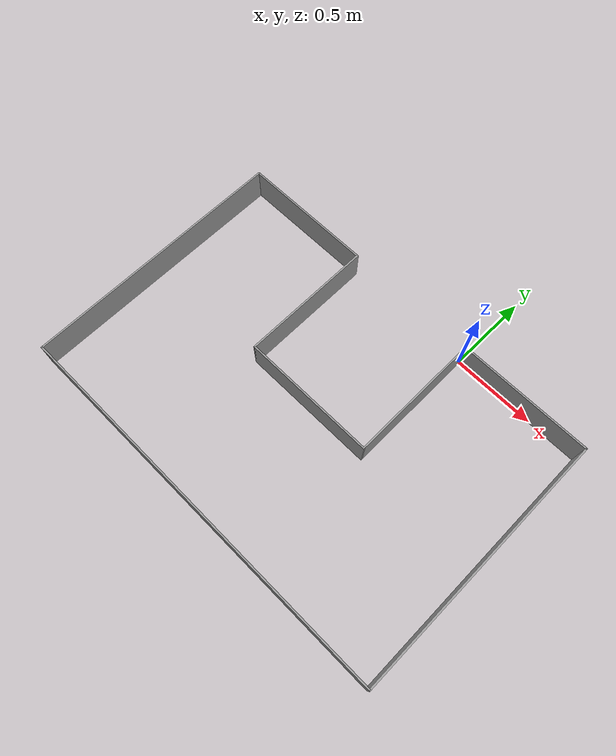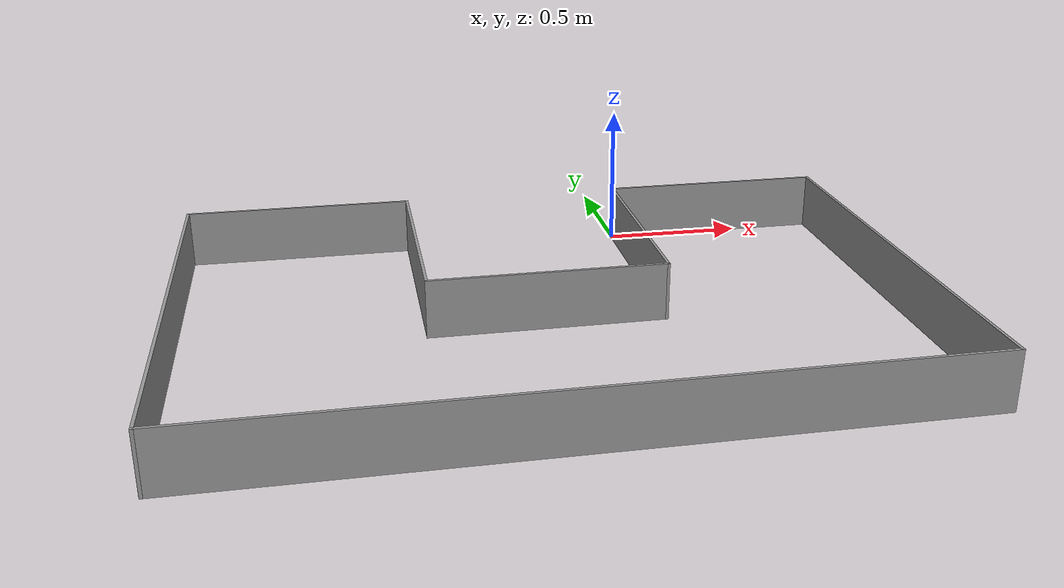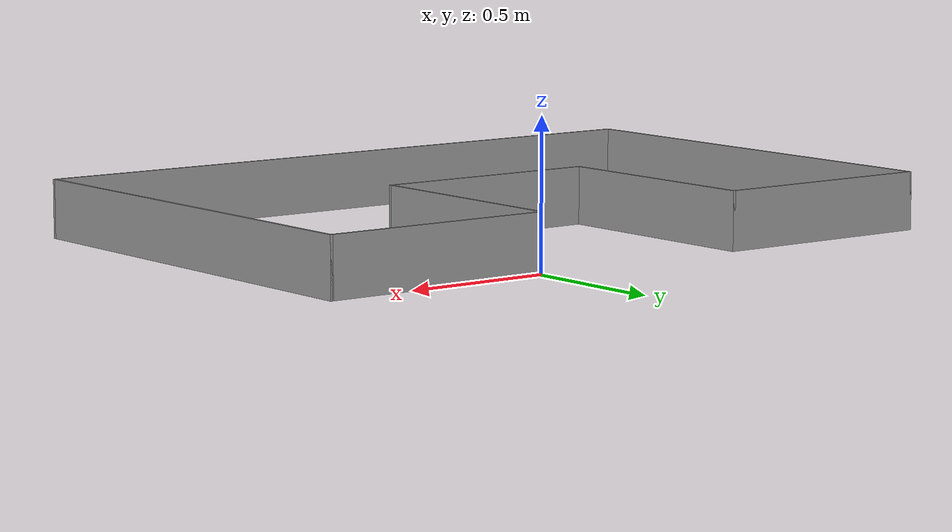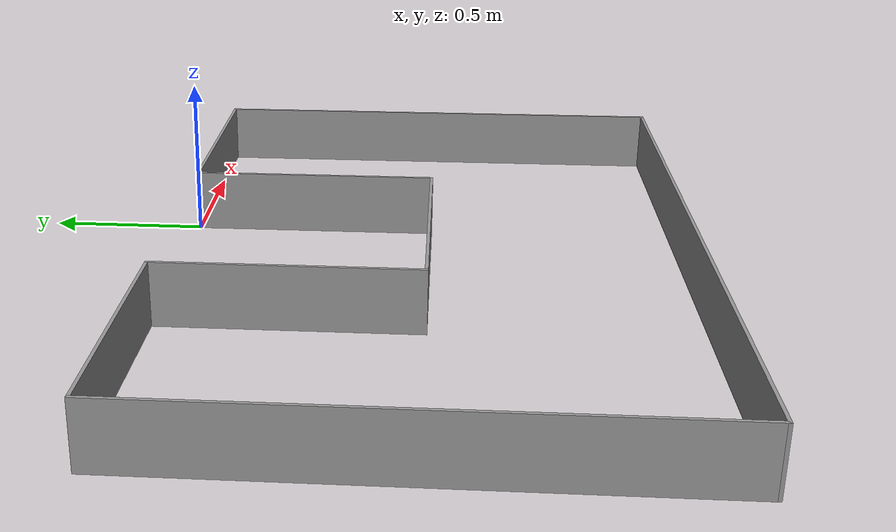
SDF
<?xml version='1.0'?>
<sdf version='1.6'>
  <model name='lmev_track3'>
    <pose frame=''>-0.4 -0.8 0 0 -0 0</pose>

    <!-- Construction of the walls-->
    <link name='Wall_0'>
      <collision name='Wall_0_Collision'>
        <geometry>
          <box>
            <size>0.81 0.01 0.2</size>
          </box>
        </geometry>
        <pose frame=''>0 0 0.1 0 -0 0</pose>
      </collision>
      <visual name='Wall_0_Visual'>
        <pose frame=''>0 0 0.1 0 -0 0</pose>
        <cast_shadows>true</cast_shadows>
        <geometry>
          <box>
            <size>0.81 0.01 0.2</size>
          </box>
        </geometry>
        <material>
          <script>
            <uri>file://media/materials/scripts/gazebo.material</uri>
            <name>Gazebo/Grey</name>
          </script>
          <ambient>0.333333 0.333333 0.333333 1</ambient>
        </material>
        <meta>
          <layer>0</layer>
        </meta>
      </visual>
      <pose frame=''>0.8 0.8 0 0 -0 0</pose>
    </link>
    <link name='Wall_10'>
      <collision name='Wall_10_Collision'>
        <geometry>
          <box>
            <size>0.804 0.01 0.2</size>
          </box>
        </geometry>
        <pose frame=''>0 0 0.1 0 -0 0</pose>
      </collision>
      <visual name='Wall_10_Visual'>
      	<cast_shadows>true</cast_shadows>
        <pose frame=''>0 0 0.1 0 -0 0</pose>
        <geometry>
          <box>
            <size>0.804 0.01 0.2</size>
          </box>
        </geometry>
        <material>
          <script>
            <uri>file://media/materials/scripts/gazebo.material</uri>
            <name>Gazebo/Grey</name>
          </script>
          <ambient>0.333333 0.333333 0.333333 1</ambient>
        </material>
        <meta>
          <layer>0</layer>
        </meta>
      </visual>
      <pose frame=''>-0.4 0.403 0 0 0 -1.5708</pose>
    </link>
    <link name='Wall_12'>
      <collision name='Wall_12_Collision'>
        <geometry>
          <box>
            <size>0.804 0.01 0.2</size>
          </box>
        </geometry>
        <pose frame=''>0 0 0.1 0 -0 0</pose>
      </collision>
      <visual name='Wall_12_Visual'>
      	<cast_shadows>true</cast_shadows>
        <pose frame=''>0 0 0.1 0 -0 0</pose>
        <geometry>
          <box>
            <size>0.804 0.01 0.2</size>
          </box>
        </geometry>
        <material>
          <script>
            <uri>file://media/materials/scripts/gazebo.material</uri>
            <name>Gazebo/Grey</name>
          </script>
          <ambient>0.333333 0.333333 0.333333 1</ambient>
        </material>
        <meta>
          <layer>0</layer>
        </meta>
      </visual>
      <pose frame=''>0.4 0.403 0 0 0 -1.5708</pose>
    </link>
    <link name='Wall_14'>
      <collision name='Wall_14_Collision'>
        <geometry>
          <box>
            <size>0.81 0.01 0.2</size>
          </box>
        </geometry>
        <pose frame=''>0 0 0.1 0 -0 0</pose>
      </collision>
      <visual name='Wall_14_Visual'>
      	<cast_shadows>true</cast_shadows>
        <pose frame=''>0 0 0.1 0 -0 0</pose>
        <geometry>
          <box>
            <size>0.81 0.01 0.2</size>
          </box>
        </geometry>
        <material>
          <script>
            <uri>file://media/materials/scripts/gazebo.material</uri>
            <name>Gazebo/Grey</name>
          </script>
          <ambient>0.333333 0.333333 0.333333 1</ambient>
        </material>
        <meta>
          <layer>0</layer>
        </meta>
      </visual>
      <pose frame=''>0 0.006 0 0 -0 0</pose>
    </link>
    <link name='Wall_2'>
      <collision name='Wall_2_Collision'>
        <geometry>
          <box>
            <size>1.61 0.01 0.2</size>
          </box>
        </geometry>
        <pose frame=''>0 0 0.1 0 -0 0</pose>
      </collision>
      <visual name='Wall_2_Visual'>
      	<cast_shadows>true</cast_shadows>
        <pose frame=''>0 0 0.1 0 -0 0</pose>
        <geometry>
          <box>
            <size>1.61 0.01 0.2</size>
          </box>
        </geometry>
        <material>
          <script>
            <uri>file://media/materials/scripts/gazebo.material</uri>
            <name>Gazebo/Grey</name>
          </script>
          <ambient>0.333333 0.333333 0.333333 1</ambient>
        </material>
        <meta>
          <layer>0</layer>
        </meta>
      </visual>
      <pose frame=''>1.2 0 0 0 0 -1.5708</pose>
    </link>
    <link name='Wall_4'>
      <collision name='Wall_4_Collision'>
        <geometry>
          <box>
            <size>2.41 0.01 0.2</size>
          </box>
        </geometry>
        <pose frame=''>0 0 0.1 0 -0 0</pose>
      </collision>
      <visual name='Wall_4_Visual'>
      	<cast_shadows>true</cast_shadows>
        <pose frame=''>0 0 0.1 0 -0 0</pose>
        <geometry>
          <box>
            <size>2.41 0.01 0.2</size>
          </box>
        </geometry>
        <material>
          <script>
            <uri>file://media/materials/scripts/gazebo.material</uri>
            <name>Gazebo/Grey</name>
          </script>
          <ambient>0.333333 0.333333 0.333333 1</ambient>
        </material>
        <meta>
          <layer>0</layer>
        </meta>
      </visual>
      <pose frame=''>0 -0.8 0 0 -0 3.14159</pose>
    </link>
    <link name='Wall_6'>
      <collision name='Wall_6_Collision'>
        <geometry>
          <box>
            <size>1.61 0.01 0.2</size>
          </box>
        </geometry>
        <pose frame=''>0 0 0.1 0 -0 0</pose>
      </collision>
      <visual name='Wall_6_Visual'>
      	<cast_shadows>true</cast_shadows>
        <pose frame=''>0 0 0.1 0 -0 0</pose>
        <geometry>
          <box>
            <size>1.61 0.01 0.2</size>
          </box>
        </geometry>
        <material>
          <script>
            <uri>file://media/materials/scripts/gazebo.material</uri>
            <name>Gazebo/Grey</name>
          </script>
          <ambient>0.333333 0.333333 0.333333 1</ambient>
        </material>
        <meta>
          <layer>0</layer>
        </meta>
      </visual>
      <pose frame=''>-1.2 0 0 0 -0 1.5708</pose>
    </link>
    <link name='Wall_8'>
      <collision name='Wall_8_Collision'>
        <geometry>
          <box>
            <size>0.81 0.01 0.2</size>
          </box>
        </geometry>
        <pose frame=''>0 0 0.1 0 -0 0</pose>
      </collision>
      <visual name='Wall_8_Visual'>
      	<cast_shadows>true</cast_shadows>
        <pose frame=''>0 0 0.1 0 -0 0</pose>
        <geometry>
          <box>
            <size>0.81 0.01 0.2</size>
          </box>
        </geometry>
        <material>
          <script>
            <uri>file://media/materials/scripts/gazebo.material</uri>
            <name>Gazebo/Grey</name>
          </script>
          <ambient>0.333333 0.333333 0.333333 1</ambient>
        </material>
        <meta>
          <layer>0</layer>
        </meta>
      </visual>
      <pose frame=''>-0.8 0.8 0 0 -0 0</pose>
    </link>
    <!-- Static! -->
    <static>1</static>
  </model>
</sdf>
